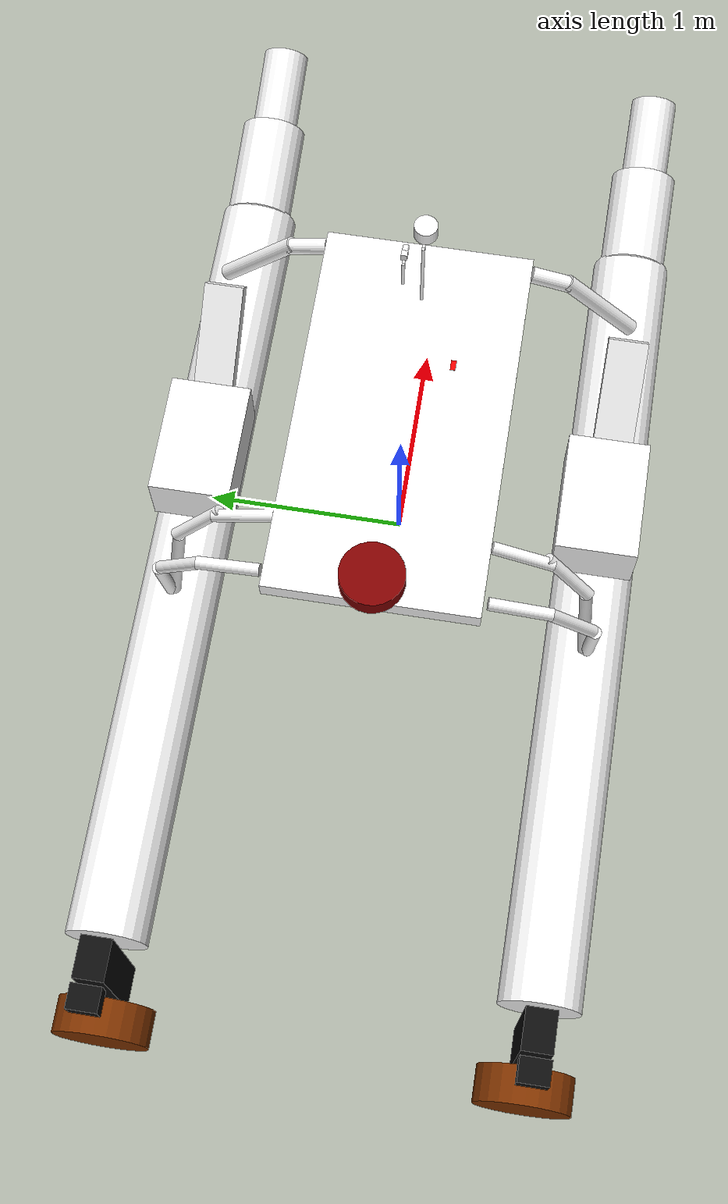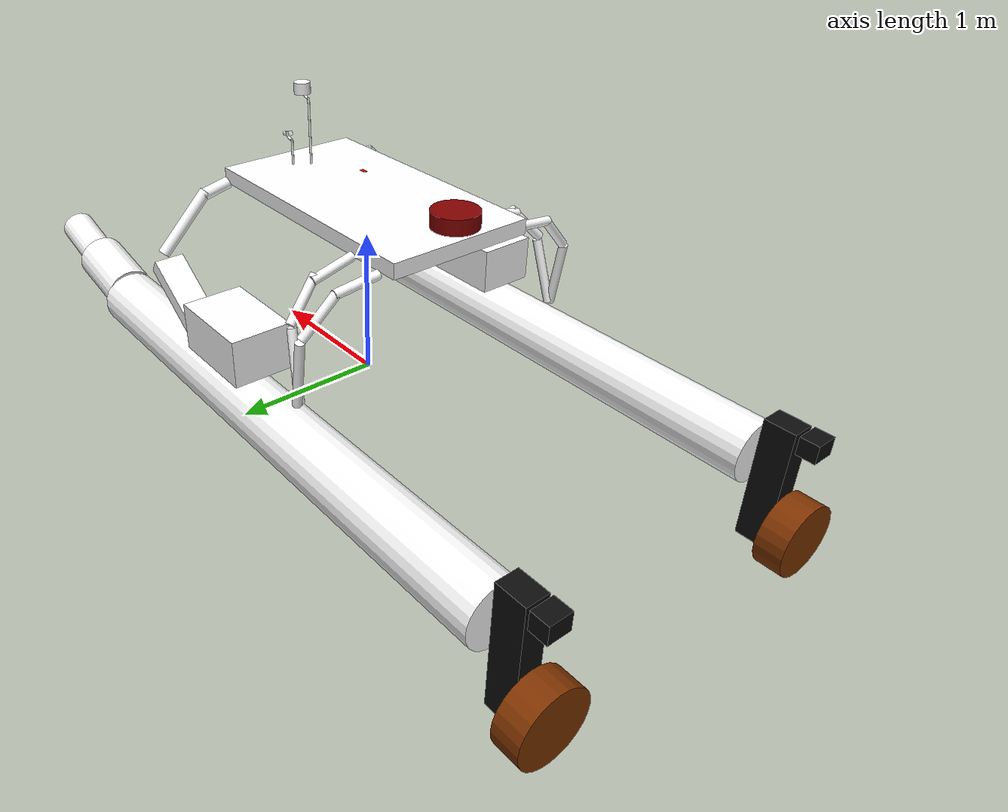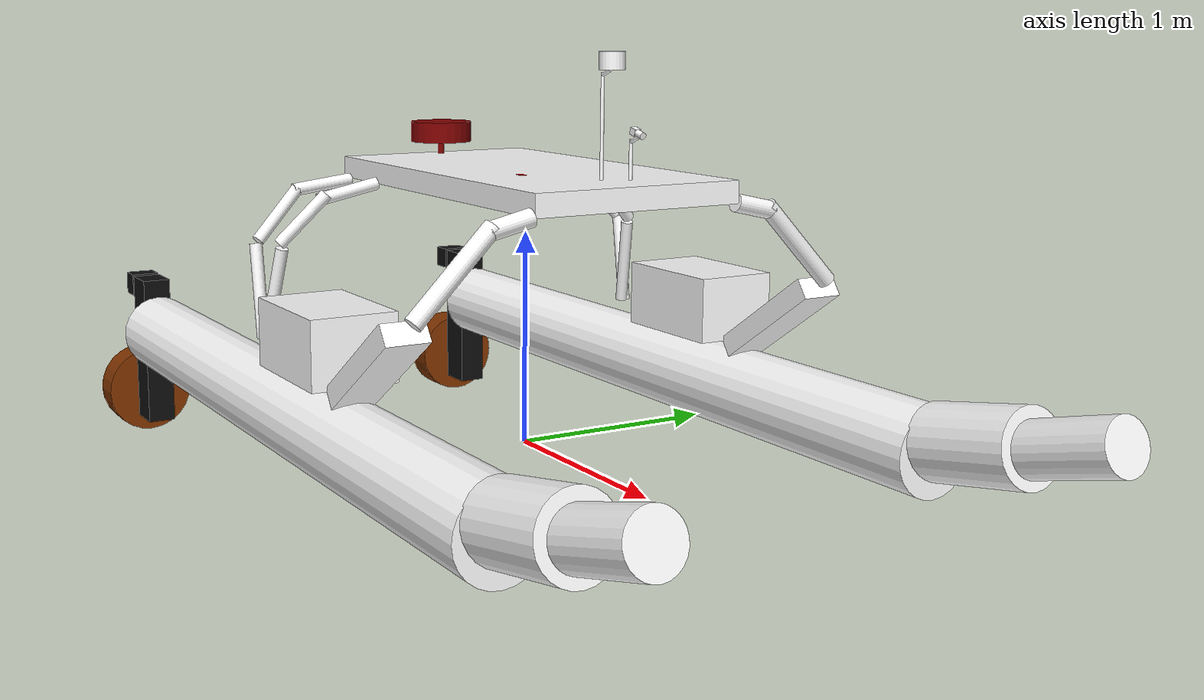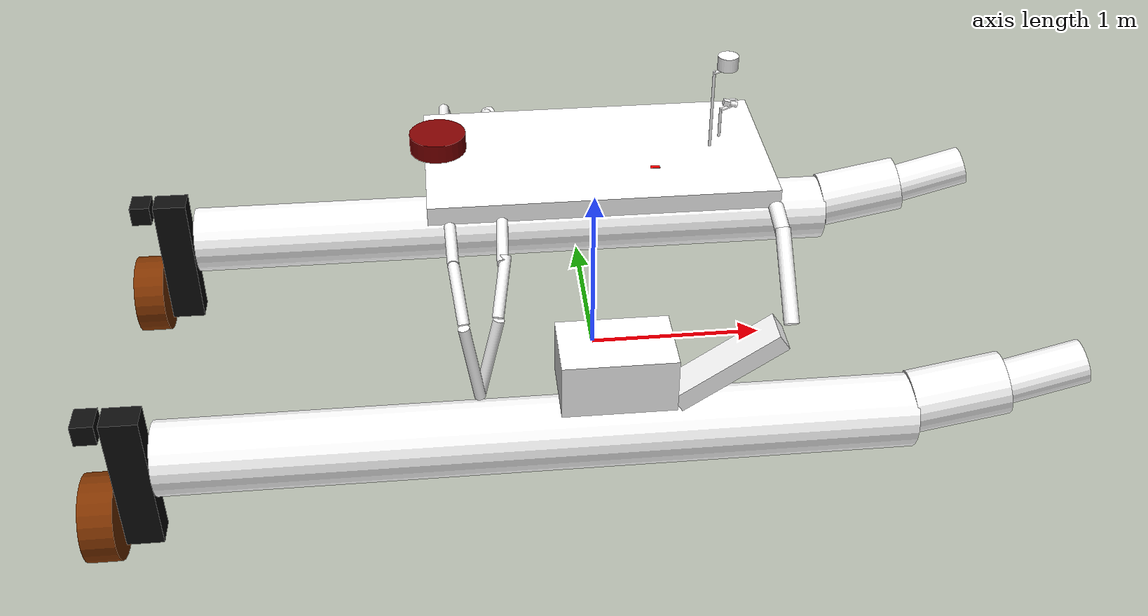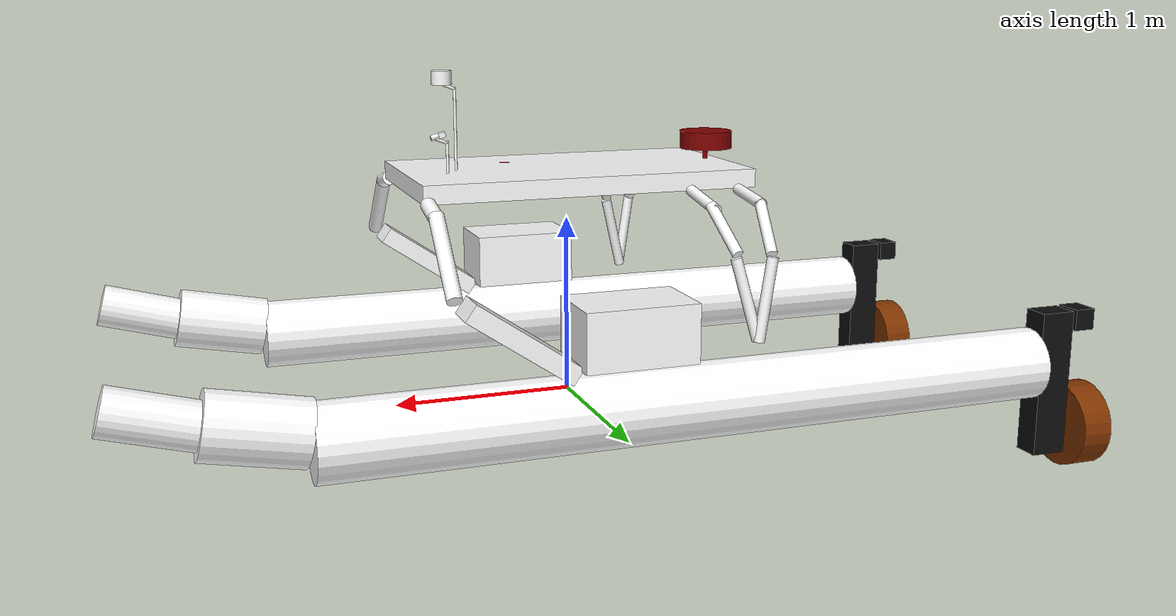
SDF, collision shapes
<?xml version='1.0'?>
<sdf version='1.10'>
  <model name='wamv'>
    <link name='wamv/base_link'>
      <inertial>
        <pose>-0.3 0 0 0 0 0</pose>
        <mass>130</mass>
        <inertia>
          <ixx>200</ixx>
          <iyy>400</iyy>
          <izz>400</izz>
        </inertia>
      </inertial>
      <collision name='wamv/base_link_fixed_joint_lump__left_float_collision'>
        <pose>-0.40000000000000002 1.03 0.20000000000000001 0 1.5707963267948966 0</pose>
        <geometry>
          <cylinder>
            <length>4</length>
            <radius>0.20000000000000001</radius>
          </cylinder>
        </geometry>
      </collision>
      <collision name='wamv/base_link_fixed_joint_lump__left_mid_float_collision_1'>
        <pose>1.8500000000000001 1.03 0.29999999999999999 0 1.3799999999999997 0</pose>
        <geometry>
          <cylinder>
            <length>0.5</length>
            <radius>0.17000000000000001</radius>
          </cylinder>
        </geometry>
      </collision>
      <collision name='wamv/base_link_fixed_joint_lump__left_front_float_collision_2'>
        <pose>2.2999999999999998 1.03 0.40000000000000002 0 1.3 0</pose>
        <geometry>
          <cylinder>
            <length>0.45000000000000001</length>
            <radius>0.12</radius>
          </cylinder>
        </geometry>
      </collision>
      <collision name='wamv/base_link_fixed_joint_lump__front_left_beam_lower_collision_3'>
        <pose>0.90000000000000002 0.84999999999999998 1 0.78000000000000003 0 0</pose>
        <geometry>
          <cylinder>
            <length>0.5</length>
            <radius>0.040000000000000001</radius>
          </cylinder>
        </geometry>
      </collision>
      <collision name='wamv/base_link_fixed_joint_lump__front_left_beam_upper_collision_4'>
        <pose>0.90000000000000002 0.59999999999999998 1.1799999999999999 1.3500000000000001 0 0</pose>
        <geometry>
          <cylinder>
            <length>0.20000000000000001</length>
            <radius>0.040000000000000001</radius>
          </cylinder>
        </geometry>
      </collision>
      <collision name='wamv/base_link_fixed_joint_lump__mid_left_beam_lower_collision_5'>
        <pose>-0.65000000000000002 0.98999999999999999 0.69999999999999996 0.099999999999999978 0.25000000000000006 0</pose>
        <geometry>
          <cylinder>
            <length>0.45000000000000001</length>
            <radius>0.029999999999999999</radius>
          </cylinder>
        </geometry>
      </collision>
      <collision name='wamv/base_link_fixed_joint_lump__mid_left_beam_medium_collision_6'>
        <pose>-0.56999999999999995 0.87 1.05 0.75000000000000033 0.25000000000000017 0</pose>
        <geometry>
          <cylinder>
            <length>0.32000000000000001</length>
            <radius>0.029999999999999999</radius>
          </cylinder>
        </geometry>
      </collision>
      <collision name='wamv/base_link_fixed_joint_lump__mid_left_beam_upper_collision_7'>
        <pose>-0.55000000000000004 0.65000000000000002 1.1699999999999999 1.3500000000000001 0.25000000000000011 0</pose>
        <geometry>
          <cylinder>
            <length>0.29999999999999999</length>
            <radius>0.029999999999999999</radius>
          </cylinder>
        </geometry>
      </collision>
      <collision name='wamv/base_link_fixed_joint_lump__rear_left_beam_lower_collision_8'>
        <pose>-0.73999999999999999 1.03 0.69999999999999996 0 -0.14999999999999999 0</pose>
        <geometry>
          <cylinder>
            <length>0.45000000000000001</length>
            <radius>0.029999999999999999</radius>
          </cylinder>
        </geometry>
      </collision>
      <collision name='wamv/base_link_fixed_joint_lump__rear_left_beam_medium_collision_9'>
        <pose>-0.79000000000000004 0.91000000000000003 1.05 0.75000000000000022 -0.14999999999999999 -1.4035390109491176e-17</pose>
        <geometry>
          <cylinder>
            <length>0.32000000000000001</length>
            <radius>0.029999999999999999</radius>
          </cylinder>
        </geometry>
      </collision>
      <collision name='wamv/base_link_fixed_joint_lump__rear_left_beam_upper_collision_10'>
        <pose>-0.81000000000000005 0.67000000000000004 1.1799999999999999 1.45 -0.14999999999999999 0</pose>
        <geometry>
          <cylinder>
            <length>0.29999999999999999</length>
            <radius>0.029999999999999999</radius>
          </cylinder>
        </geometry>
      </collision>
      <collision name='wamv/base_link_fixed_joint_lump__left_joint_collision_11'>
        <pose>0.57999999999999996 1.03 0.59999999999999998 0 -0.59999999999999987 0</pose>
        <geometry>
          <box>
            <size>0.65000000000000002 0.20000000000000001 0.10000000000000001</size>
          </box>
        </geometry>
      </collision>
      <collision name='wamv/base_link_fixed_joint_lump__right_float_collision_12'>
        <pose>-0.40000000000000002 -1.03 0.20000000000000001 0 1.5707963267948966 0</pose>
        <geometry>
          <cylinder>
            <length>4</length>
            <radius>0.20000000000000001</radius>
          </cylinder>
        </geometry>
      </collision>
      <collision name='wamv/base_link_fixed_joint_lump__right_mid_float_collision_13'>
        <pose>1.8500000000000001 -1.03 0.29999999999999999 0 1.3799999999999997 0</pose>
        <geometry>
          <cylinder>
            <length>0.5</length>
            <radius>0.17000000000000001</radius>
          </cylinder>
        </geometry>
      </collision>
      <collision name='wamv/base_link_fixed_joint_lump__right_front_float_collision_14'>
        <pose>2.2999999999999998 -1.03 0.40000000000000002 0 1.3 0</pose>
        <geometry>
          <cylinder>
            <length>0.45000000000000001</length>
            <radius>0.12</radius>
          </cylinder>
        </geometry>
      </collision>
      <collision name='wamv/base_link_fixed_joint_lump__front_right_beam_lower_collision_15'>
        <pose>0.90000000000000002 -0.84999999999999998 1 -0.78000000000000003 0 0</pose>
        <geometry>
          <cylinder>
            <length>0.5</length>
            <radius>0.040000000000000001</radius>
          </cylinder>
        </geometry>
      </collision>
      <collision name='wamv/base_link_fixed_joint_lump__front_right_beam_upper_collision_16'>
        <pose>0.90000000000000002 -0.59999999999999998 1.1799999999999999 -1.3500000000000001 0 0</pose>
        <geometry>
          <cylinder>
            <length>0.20000000000000001</length>
            <radius>0.040000000000000001</radius>
          </cylinder>
        </geometry>
      </collision>
      <collision name='wamv/base_link_fixed_joint_lump__mid_right_beam_lower_collision_17'>
        <pose>-0.65000000000000002 -0.98999999999999999 0.69999999999999996 -0.099999999999999978 0.25000000000000006 0</pose>
        <geometry>
          <cylinder>
            <length>0.45000000000000001</length>
            <radius>0.029999999999999999</radius>
          </cylinder>
        </geometry>
      </collision>
      <collision name='wamv/base_link_fixed_joint_lump__mid_right_beam_medium_collision_18'>
        <pose>-0.56999999999999995 -0.87 1.05 -0.75000000000000033 0.25000000000000017 0</pose>
        <geometry>
          <cylinder>
            <length>0.32000000000000001</length>
            <radius>0.029999999999999999</radius>
          </cylinder>
        </geometry>
      </collision>
      <collision name='wamv/base_link_fixed_joint_lump__mid_right_beam_upper_collision_19'>
        <pose>-0.55000000000000004 -0.65000000000000002 1.1699999999999999 -1.3500000000000001 0.25000000000000011 0</pose>
        <geometry>
          <cylinder>
            <length>0.29999999999999999</length>
            <radius>0.029999999999999999</radius>
          </cylinder>
        </geometry>
      </collision>
      <collision name='wamv/base_link_fixed_joint_lump__rear_right_beam_lower_collision_20'>
        <pose>-0.73999999999999999 -1.03 0.69999999999999996 0 -0.14999999999999999 0</pose>
        <geometry>
          <cylinder>
            <length>0.45000000000000001</length>
            <radius>0.029999999999999999</radius>
          </cylinder>
        </geometry>
      </collision>
      <collision name='wamv/base_link_fixed_joint_lump__rear_right_beam_medium_collision_21'>
        <pose>-0.79000000000000004 -0.91000000000000003 1.05 -0.75000000000000022 -0.14999999999999999 1.4035390109491176e-17</pose>
        <geometry>
          <cylinder>
            <length>0.32000000000000001</length>
            <radius>0.029999999999999999</radius>
          </cylinder>
        </geometry>
      </collision>
      <collision name='wamv/base_link_fixed_joint_lump__rear_right_beam_upper_collision_22'>
        <pose>-0.81000000000000005 -0.67000000000000004 1.1799999999999999 -1.45 -0.14999999999999999 0</pose>
        <geometry>
          <cylinder>
            <length>0.29999999999999999</length>
            <radius>0.029999999999999999</radius>
          </cylinder>
        </geometry>
      </collision>
      <collision name='wamv/base_link_fixed_joint_lump__right_joint_collision_23'>
        <pose>0.57999999999999996 -1.03 0.59999999999999998 0 -0.59999999999999987 0</pose>
        <geometry>
          <box>
            <size>0.65000000000000002 0.20000000000000001 0.10000000000000001</size>
          </box>
        </geometry>
      </collision>
      <collision name='wamv/base_link_fixed_joint_lump__top_base_collision_24'>
        <pose>0 0 1.25 0 0 0</pose>
        <geometry>
          <box>
            <size>1.8500000000000001 1 0.10000000000000001</size>
          </box>
        </geometry>
      </collision>
      <collision name='wamv/base_link_fixed_joint_lump__front_camera_post_collision_collision_25'>
        <pose>0.69999999999999996 0.10000000000000001 1.3847499999999999 0 0 0</pose>
        <geometry>
          <cylinder>
            <length>0.17649999999999999</length>
            <radius>0.0076</radius>
          </cylinder>
        </geometry>
      </collision>
      <collision name='wamv/base_link_fixed_joint_lump__front_camera_post_arm_collision_collision_26'>
        <pose>0.72999999999999998 0.10000000000000001 1.4730000000000001 -1.2042771838760871 5.5511151231257827e-17 -1.570796326794897</pose>
        <geometry>
          <cylinder>
            <length>0.065000000000000002</length>
            <radius>0.0080000000000000002</radius>
          </cylinder>
        </geometry>
      </collision>
      <collision name='wamv/base_link_fixed_joint_lump__front_camera_lens_collision_collision_27'>
        <pose>0.76738666487320317 0.10000000000000001 1.495341257188155 3.1415926535897931 1.3089969389957472 3.1415926535897931</pose>
        <geometry>
          <cylinder>
            <length>0.042000000000000003</length>
            <radius>0.014999999999999999</radius>
          </cylinder>
        </geometry>
      </collision>
      <collision name='wamv/base_link_fixed_joint_lump__front_camera_box_collision_collision_28'>
        <pose>0.73019852056107404 0.10000000000000001 1.5053057904246021 0 0.26179938779914941 0</pose>
        <geometry>
          <box>
            <size>0.035999999999999997 0.029999999999999999 0.029999999999999999</size>
          </box>
        </geometry>
      </collision>
      <collision name='wamv/base_link_fixed_joint_lump__lidar_wamv_post_collision_collision_33'>
        <pose>0.62999999999999989 0 1.52325 0 0 0</pose>
        <geometry>
          <cylinder>
            <length>0.45350000000000013</length>
            <radius>0.0076</radius>
          </cylinder>
        </geometry>
      </collision>
      <collision name='wamv/base_link_fixed_joint_lump__lidar_wamv_post_arm_collision_collision_34'>
        <pose>0.65999999999999992 0 1.75 -1.2042771838760871 5.5511151231257827e-17 -1.570796326794897</pose>
        <geometry>
          <cylinder>
            <length>0.065000000000000002</length>
            <radius>0.0080000000000000002</radius>
          </cylinder>
        </geometry>
      </collision>
      <collision name='wamv/base_link_fixed_joint_lump__lidar_wamv_collision_collision_35'>
        <pose>0.69999999999999996 0 1.8 0 0 0</pose>
        <geometry>
          <cylinder>
            <length>0.074999999999999997</length>
            <radius>0.055</radius>
          </cylinder>
        </geometry>
      </collision>
      <collision name='wamv/base_link_fixed_joint_lump__left_battery_collision_collision_40'>
        <pose>0 1 0.59999999999999998 0 0 0</pose>
        <geometry>
          <box>
            <size>0.59999999999999998 0.40000000000000002 0.31</size>
          </box>
        </geometry>
      </collision>
      <collision name='wamv/base_link_fixed_joint_lump__right_battery_collision_collision_41'>
        <pose>0 -1 0.59999999999999998 0 0 0</pose>
        <geometry>
          <box>
            <size>0.59999999999999998 0.40000000000000002 0.31</size>
          </box>
        </geometry>
      </collision>
      <visual name='wamv/base_link_visual'>
        <pose>0 0 0 0 0 0</pose>
        <geometry>
          <mesh>
            <scale>1 1 1</scale>
            <uri>model://wamv/meshes/WAMV.dae</uri>
          </mesh>
        </geometry>
        <material>
          <diffuse>1 1 1 1</diffuse>
          <specular>1 1 1 1</specular>
          <pbr>
            <metal>
              <albedo_map>model://wamv/materials/WAM-V_Albedo.png</albedo_map>
              <normal_map>model://wamv/materials/WAM-V_Normal.png</normal_map>
              <roughness_map>model://wamv/materials/WAM-V_Roughness.png</roughness_map>
              <metalness_map>model://wamv/materials/WAM-V_Metalness.png</metalness_map>
            </metal>
          </pbr>
        </material>
      </visual>
      <visual name='wamv/base_link_fixed_joint_lump__wamv/front_camera_post_link_visual_1'>
        <pose>0.69999999999999996 0.10000000000000001 1.3847499999999999 0 0 0</pose>
        <geometry>
          <cylinder>
            <length>0.17649999999999999</length>
            <radius>0.0076</radius>
          </cylinder>
        </geometry>
        <material>
          <diffuse>0 0 0 1</diffuse>
          <ambient>0 0 0 1</ambient>
        </material>
      </visual>
      <visual name='wamv/base_link_fixed_joint_lump__front_camera_post_arm_visual_visual_2'>
        <pose>0.69199999999999995 0.10000000000000001 1.47 -1.0471975511965981 5.5511151231257827e-17 -1.570796326794897</pose>
        <geometry>
          <mesh>
            <scale>1 1 1</scale>
            <uri>model://sensor_post/meshes/sensor_post_arm.dae</uri>
          </mesh>
        </geometry>
      </visual>
      <visual name='wamv/base_link_fixed_joint_lump__wamv/front_camera_link_visual_3'>
        <pose>0.71812444773246065 0.10000000000000001 1.5085410284883829 0.26179938779914941 2.7755575615628914e-17 1.570796326794897</pose>
        <geometry>
          <mesh>
            <scale>1 1 1</scale>
            <uri>model://mono_camera/meshes/mono_camera.dae</uri>
          </mesh>
        </geometry>
        <material>
          <diffuse>1 1 1 1</diffuse>
          <specular>1 1 1 1</specular>
          <pbr>
            <metal>
              <albedo_map>model://mono_camera/materials/mono_camera_Albedo.png</albedo_map>
              <normal_map>model://mono_camera/materials/mono_camera_Normal.png</normal_map>
              <roughness_map>model://mono_camera/materials/mono_camera_Roughness.png</roughness_map>
              <metalness_map>model://mono_camera/materials/mono_camera_Metalness.png</metalness_map>
            </metal>
          </pbr>
        </material>
      </visual>
      <visual name='wamv/base_link_fixed_joint_lump__wamv/lidar_wamv_post_link_visual_7'>
        <pose>0.62999999999999989 0 1.52325 0 0 0</pose>
        <geometry>
          <cylinder>
            <length>0.45350000000000013</length>
            <radius>0.0076</radius>
          </cylinder>
        </geometry>
        <material>
          <diffuse>0 0 0 1</diffuse>
          <ambient>0 0 0 1</ambient>
        </material>
      </visual>
      <visual name='wamv/base_link_fixed_joint_lump__lidar_wamv_post_arm_visual_visual_8'>
        <pose>0.62199999999999989 0 1.7470000000000001 -1.0471975511965981 5.5511151231257827e-17 -1.570796326794897</pose>
        <geometry>
          <mesh>
            <scale>1 1 1</scale>
            <uri>model://sensor_post/meshes/sensor_post_arm.dae</uri>
          </mesh>
        </geometry>
      </visual>
      <visual name='wamv/base_link_fixed_joint_lump__wamv/lidar_wamv_link_visual_9'>
        <pose>0.69999999999999996 0 1.7649999999999999 0 0 0</pose>
        <geometry>
          <mesh>
            <scale>1 1 1</scale>
            <uri>model://3d_lidar/meshes/3d_lidar.dae</uri>
          </mesh>
        </geometry>
        <material>
          <diffuse>1 1 1 1</diffuse>
          <specular>1 1 1 1</specular>
          <pbr>
            <metal>
              <albedo_map>model://3d_lidar/materials/3d_Lidar_Albedo.png</albedo_map>
              <normal_map>model://3d_lidar/materials/3d_Lidar_Normal.png</normal_map>
              <roughness_map>model://3d_lidar/materials/3d_Lidar_Roughness.png</roughness_map>
              <metalness_map>model://3d_lidar/materials/3d_Lidar_Metalness.png</metalness_map>
            </metal>
          </pbr>
        </material>
      </visual>
      <visual name='wamv/base_link_fixed_joint_lump__wamv/left_battery_link_visual_13'>
        <pose>0 -0.03000000000000003 0 0 0 0</pose>
        <geometry>
          <mesh>
            <scale>1 1 1</scale>
            <uri>model://battery/meshes/battery.dae</uri>
          </mesh>
        </geometry>
        <material>
          <diffuse>1 1 1 1</diffuse>
          <specular>1 1 1 1</specular>
          <pbr>
            <metal>
              <albedo_map>model://battery/materials/battery_Albedo.png</albedo_map>
              <normal_map>model://battery/materials/battery_Normal.png</normal_map>
              <roughness_map>model://battery/materials/battery_Roughness.png</roughness_map>
              <metalness_map>model://battery/materials/battery_Metalness.png</metalness_map>
            </metal>
          </pbr>
        </material>
      </visual>
      <visual name='wamv/base_link_fixed_joint_lump__wamv/right_battery_link_visual_14'>
        <pose>0 -2.0299999999999998 0 0 0 0</pose>
        <geometry>
          <mesh>
            <scale>1 1 1</scale>
            <uri>model://battery/meshes/battery.dae</uri>
          </mesh>
        </geometry>
        <material>
          <diffuse>1 1 1 1</diffuse>
          <specular>1 1 1 1</specular>
          <pbr>
            <metal>
              <albedo_map>model://battery/materials/battery_Albedo.png</albedo_map>
              <normal_map>model://battery/materials/battery_Normal.png</normal_map>
              <roughness_map>model://battery/materials/battery_Roughness.png</roughness_map>
              <metalness_map>model://battery/materials/battery_Metalness.png</metalness_map>
            </metal>
          </pbr>
        </material>
      </visual>
      <sensor name='contact_sensor' type='contact'>
        <contact>
          <collision>wamv/base_link_fixed_joint_lump__top_base_collision_24</collision>
          <collision>wamv/base_link_fixed_joint_lump__left_float_collision</collision>
          <collision>wamv/base_link_fixed_joint_lump__left_mid_float_collision_1</collision>
          <collision>wamv/base_link_fixed_joint_lump__left_front_float_collision_2</collision>
          <collision>wamv/base_link_fixed_joint_lump__right_float_collision_12</collision>
          <collision>wamv/base_link_fixed_joint_lump__right_mid_float_collision_13</collision>
          <collision>wamv/base_link_fixed_joint_lump__right_front_float_collision_14</collision>
          <topic>/wamv/contacts</topic>
        </contact>
        <always_on>true</always_on>
        <update_rate>5</update_rate>
      </sensor>
      <sensor name='front_camera_sensor' type='camera'>
        <update_rate>30</update_rate>
        <camera name='front_camera_camera'>
          <horizontal_fov>1.3962634</horizontal_fov>
          <image>
            <width>1280</width>
            <height>720</height>
            <format>R8G8B8</format>
          </image>
          <clip>
            <near>0.050000000000000003</near>
            <far>400</far>
          </clip>
          <noise>
            <type>gaussian</type>
            <mean>0</mean>
            <stddev>0.0070000000000000001</stddev>
          </noise>
        </camera>
        <pose>0.75 0.10000000000000001 1.5 0 0.261799 0</pose>
      </sensor>
      <sensor name='lidar_wamv_sensor' type='gpu_ray'>
        <update_rate>10</update_rate>
        <ray>
          <scan>
            <horizontal>
              <samples>1875</samples>
              <resolution>1</resolution>
              <min_angle>-3.1415926535897931</min_angle>
              <max_angle>3.1415926535897931</max_angle>
            </horizontal>
            <vertical>
              <samples>16</samples>
              <resolution>1</resolution>
              <min_angle>-0.26179938779914941</min_angle>
              <max_angle>0.26179938779914941</max_angle>
            </vertical>
          </scan>
          <range>
            <min>0.10000000000000001</min>
            <max>130</max>
          </range>
          <noise>
            <type>gaussian</type>
            <mean>0</mean>
            <stddev>0.01</stddev>
          </noise>
        </ray>
        <pose>0.69999999999999996 0 1.8 0 0 0</pose>
      </sensor>
    </link>
    <joint name='wamv/gps_wamv_joint' type='revolute'>
      <pose relative_to='wamv/base_link'>-0.84999999999999998 0 1.3 0 0 0</pose>
      <parent>wamv/base_link</parent>
      <child>wamv/gps_wamv_link</child>
      <axis>
        <xyz>0 0 1</xyz>
        <limit>
          <lower>0</lower>
          <upper>0</upper>
          <effort>1000</effort>
          <velocity>0</velocity>
        </limit>
        <dynamics>
          <spring_reference>0</spring_reference>
          <spring_stiffness>0</spring_stiffness>
        </dynamics>
      </axis>
    </joint>
    <link name='wamv/gps_wamv_link'>
      <pose relative_to='wamv/gps_wamv_joint'>0 0 0 0 0 0</pose>
      <inertial>
        <pose>0 0 0 0 0 0</pose>
        <mass>1</mass>
        <inertia>
          <ixx>0.0064580000000000002</ixx>
          <ixy>0</ixy>
          <ixz>0</ixz>
          <iyy>0.0064580000000000002</iyy>
          <iyz>0</iyz>
          <izz>0.01125</izz>
        </inertia>
      </inertial>
      <collision name='wamv/gps_wamv_link_fixed_joint_lump__gps_wamv_collision_base_collision'>
        <pose>0 0 0.025000000000000001 0 0 0</pose>
        <geometry>
          <cylinder>
            <length>0.050000000000000003</length>
            <radius>0.014999999999999999</radius>
          </cylinder>
        </geometry>
      </collision>
      <collision name='wamv/gps_wamv_link_fixed_joint_lump__gps_wamv_collision_antenna_collision_1'>
        <pose>0 0 0.11 0 0 0</pose>
        <geometry>
          <cylinder>
            <length>0.10000000000000001</length>
            <radius>0.14999999999999999</radius>
          </cylinder>
        </geometry>
      </collision>
      <visual name='wamv/gps_wamv_link_fixed_joint_lump__gps_wamv_visual_visual'>
        <pose>0 0 0 0 0 0</pose>
        <geometry>
          <mesh>
            <scale>1 1 1</scale>
            <uri>model://gps/meshes/gps.dae</uri>
          </mesh>
        </geometry>
        <material>
          <diffuse>0.5 0.0 0.0 1</diffuse>
          <specular>0.5 0.0 0.0 1</specular>
          <ambient>0.5 0.0 0.0 1</ambient>
        </material>
      </visual>
      <sensor name='navsat' type='navsat'>
        <always_on>true</always_on>
        <update_rate>20</update_rate>
      </sensor>
    </link>
    <joint name='wamv/imu_wamv_joint' type='revolute'>
      <pose relative_to='wamv/base_link'>0.29999999999999999 -0.20000000000000001 1.3 0 0 0</pose>
      <parent>wamv/base_link</parent>
      <child>wamv/imu_wamv_link</child>
      <axis>
        <xyz>0 0 1</xyz>
        <limit>
          <lower>0</lower>
          <upper>0</upper>
          <effort>1000</effort>
          <velocity>0</velocity>
        </limit>
        <dynamics>
          <spring_reference>0</spring_reference>
          <spring_stiffness>0</spring_stiffness>
        </dynamics>
      </axis>
    </joint>
    <link name='wamv/imu_wamv_link'>
      <pose relative_to='wamv/imu_wamv_joint'>0 0 0 0 0 0</pose>
      <inertial>
        <pose>0 0 0 0 0 0</pose>
        <mass>0.10000000000000001</mass>
        <inertia>
          <ixx>5.4199999999999998e-06</ixx>
          <ixy>0</ixy>
          <ixz>0</ixz>
          <iyy>2.1039999999999998e-05</iyy>
          <iyz>0</iyz>
          <izz>2.6040000000000001e-05</izz>
        </inertia>
      </inertial>
      <collision name='wamv/imu_wamv_link_fixed_joint_lump__imu_wamv_collision_collision'>
        <pose>0 0 0 0 0 0</pose>
        <geometry>
          <box>
            <size>0.050000000000000003 0.025000000000000001 0.0050000000000000001</size>
          </box>
        </geometry>
      </collision>
      <visual name='wamv/imu_wamv_link_fixed_joint_lump__imu_wamv_visual_visual'>
        <pose>0 0 0 0 0 0</pose>
        <geometry>
          <box>
            <size>0.050000000000000003 0.025000000000000001 0.0050000000000000001</size>
          </box>
        </geometry>
        <material>
          <diffuse>1 0 0 1</diffuse>
          <ambient>1 0 0 1</ambient>
        </material>
      </visual>
      <sensor name='imu_wamv_sensor' type='imu'>
        <update_rate>100</update_rate>
        <imu>
          <angular_velocity>
            <x>
              <noise type='gaussian'>
                <mean>0</mean>
                <stddev>0.0089999999999999993</stddev>
                <bias_mean>0.00075000000000000002</bias_mean>
                <bias_stddev>0.0050000000000000001</bias_stddev>
                <dynamic_bias_stddev>2.0000000000000002e-05</dynamic_bias_stddev>
                <dynamic_bias_correlation_time>400</dynamic_bias_correlation_time>
                <precision>0.00025000000000000001</precision>
              </noise>
            </x>
            <y>
              <noise type='gaussian'>
                <mean>0</mean>
                <stddev>0.0089999999999999993</stddev>
                <bias_mean>0.00075000000000000002</bias_mean>
                <bias_stddev>0.0050000000000000001</bias_stddev>
                <dynamic_bias_stddev>2.0000000000000002e-05</dynamic_bias_stddev>
                <dynamic_bias_correlation_time>400</dynamic_bias_correlation_time>
                <precision>0.00025000000000000001</precision>
              </noise>
            </y>
            <z>
              <noise type='gaussian'>
                <mean>0</mean>
                <stddev>0.0089999999999999993</stddev>
                <bias_mean>0.00075000000000000002</bias_mean>
                <bias_stddev>0.0050000000000000001</bias_stddev>
                <dynamic_bias_stddev>2.0000000000000002e-05</dynamic_bias_stddev>
                <dynamic_bias_correlation_time>400</dynamic_bias_correlation_time>
                <precision>0.00025000000000000001</precision>
              </noise>
            </z>
          </angular_velocity>
          <linear_acceleration>
            <x>
              <noise type='gaussian'>
                <mean>0</mean>
                <stddev>0.021000000000000001</stddev>
                <bias_mean>0.050000000000000003</bias_mean>
                <bias_stddev>0.0074999999999999997</bias_stddev>
                <dynamic_bias_stddev>0.00037500000000000001</dynamic_bias_stddev>
                <dynamic_bias_correlation_time>175</dynamic_bias_correlation_time>
                <precision>0.0050000000000000001</precision>
              </noise>
            </x>
            <y>
              <noise type='gaussian'>
                <mean>0</mean>
                <stddev>0.021000000000000001</stddev>
                <bias_mean>0.050000000000000003</bias_mean>
                <bias_stddev>0.0074999999999999997</bias_stddev>
                <dynamic_bias_stddev>0.00037500000000000001</dynamic_bias_stddev>
                <dynamic_bias_correlation_time>175</dynamic_bias_correlation_time>
                <precision>0.0050000000000000001</precision>
              </noise>
            </y>
            <z>
              <noise type='gaussian'>
                <mean>0</mean>
                <stddev>0.021000000000000001</stddev>
                <bias_mean>0.050000000000000003</bias_mean>
                <bias_stddev>0.0074999999999999997</bias_stddev>
                <dynamic_bias_stddev>0.00037500000000000001</dynamic_bias_stddev>
                <dynamic_bias_correlation_time>175</dynamic_bias_correlation_time>
                <precision>0.0050000000000000001</precision>
              </noise>
            </z>
          </linear_acceleration>
          <orientation_reference_frame>
            <localization>ENU</localization>
          </orientation_reference_frame>
        </imu>
      </sensor>
    </link>
    <joint name='wamv/left_chassis_engine_joint' type='fixed'>
      <pose relative_to='wamv/base_link'>-2.3737759999999999 1.0271349999999999 0.31823699999999999 0 0 0</pose>
      <axis>
      <xyz>0 0 1</xyz>
      <limit>
        <lower>-1.57</lower>
        <upper>1.57</upper>
      </limit>
    </axis>
      <parent>wamv/base_link</parent>
      <child>wamv/left_engine_link</child>
    </joint>
    <link name='wamv/left_engine_link'>
      <pose relative_to='wamv/left_chassis_engine_joint'>0 0 0 0 0 0</pose>
      <inertial>
        <pose>0 0 0 0 0 0</pose>
        <mass>15</mass>
        <inertia>
          <ixx>0.88924499999999995</ixx>
          <ixy>0</ixy>
          <ixz>0</ixz>
          <iyy>0.91112499999999996</iyy>
          <iyz>0</iyz>
          <izz>0.078125</izz>
        </inertia>
      </inertial>
      <collision name='wamv/left_engine_link_fixed_joint_lump__left_engine_vertical_axis_collision_collision'>
        <pose>-0.16 0 -0.23999999999999999 0 0 0</pose>
        <geometry>
          <box>
            <size>0.20000000000000001 0.14999999999999999 0.82999999999999996</size>
          </box>
        </geometry>
      </collision>
      <collision name='wamv/left_engine_link_fixed_joint_lump__left_engine_rear_end_collision_collision_1'>
        <pose>-0.34000000000000002 0 0.12 0 0 0</pose>
        <geometry>
          <box>
            <size>0.12 0.14999999999999999 0.12</size>
          </box>
        </geometry>
      </collision>
      <visual name='wamv/left_engine_link_visual'>
        <pose>0 0 0 0 0 0</pose>
        <geometry>
          <mesh>
            <scale>1 1 1</scale>
            <uri>model://wamv/meshes/engine.dae</uri>
          </mesh>
        </geometry>
        <material>
          <diffuse>0.05 0.05 0.05 1</diffuse>
          <specular>0.05 0.05 0.05 1</specular>
          <ambient>0.05 0.05 0.05 1</ambient>
        </material>
      </visual>
    </link>
    <joint name='left_engine_propeller_joint' type='revolute'>
      <pose relative_to='wamv/left_engine_link'>-0.27815600000000001 0 -0.50937100000000002 0 0 0</pose>
      <parent>wamv/left_engine_link</parent>
      <child>wamv/left_propeller_link</child>
      <axis>
        <xyz>1 0 0</xyz>
        <limit>
          <effort>100</effort>
          <velocity>100</velocity>
          <lower>-inf</lower>
          <upper>inf</upper>
        </limit>
        <dynamics>
          <damping>0.050000000000000003</damping>
          <friction>0.050000000000000003</friction>
          <spring_reference>0</spring_reference>
          <spring_stiffness>0</spring_stiffness>
        </dynamics>
      </axis>
    </joint>
    <link name='wamv/left_propeller_link'>
      <pose relative_to='left_engine_propeller_joint'>0 0 0 0 0 0</pose>
      <inertial>
        <pose>0 0 0 0 0 0</pose>
        <mass>0.5</mass>
        <inertia>
          <ixx>0.0085450000000000005</ixx>
          <ixy>0</ixy>
          <ixz>0</ixz>
          <iyy>0.0085450000000000005</iyy>
          <iyz>0</iyz>
          <izz>0.0144</izz>
        </inertia>
      </inertial>
      <collision name='wamv/left_propeller_link_fixed_joint_lump__left_propeller_collision_collision'>
        <pose>-0.080000000000000002 0 0 0 1.5707963267948966 0</pose>
        <geometry>
          <cylinder>
            <length>0.17999999999999999</length>
            <radius>0.23999999999999999</radius>
          </cylinder>
        </geometry>
      </collision>
      <visual name='wamv/left_propeller_link_visual'>
        <pose>0 0 0 0 0 0</pose>
        <geometry>
          <mesh>
            <scale>1 1 1</scale>
            <uri>model://wamv/meshes/propeller.dae</uri>
          </mesh>
        </geometry>
        <material>
          <diffuse>0.5 0.2 0.0 1</diffuse>
          <specular>0.5 0.2 0.0 1</specular>
          <ambient>0.5 0.2 0.0 1</ambient>
        </material>
      </visual>
    </link>
    <joint name='wamv/receiver_pinger_joint' type='revolute'>
      <pose relative_to='wamv/base_link'>0 0 0 0 0 0</pose>
      <parent>wamv/base_link</parent>
      <child>wamv/receiver</child>
      <axis>
        <xyz>0 0 1</xyz>
        <limit>
          <lower>0</lower>
          <upper>0</upper>
          <effort>1000</effort>
          <velocity>0</velocity>
        </limit>
        <dynamics>
          <spring_reference>0</spring_reference>
          <spring_stiffness>0</spring_stiffness>
        </dynamics>
      </axis>
    </joint>
    <link name='wamv/receiver'>
      <pose relative_to='wamv/receiver_pinger_joint'>0 0 0 0 0 0</pose>
      <inertial>
        <pose>0 0 0 0 0 0</pose>
        <mass>0.10000000000000001</mass>
        <inertia>
          <ixx>5.4199999999999998e-06</ixx>
          <ixy>0</ixy>
          <ixz>0</ixz>
          <iyy>2.1039999999999998e-05</iyy>
          <iyz>0</iyz>
          <izz>2.6040000000000001e-05</izz>
        </inertia>
      </inertial>
      <visual name='wamv/receiver_visual'>
        <pose>0 0 0 0 0 0</pose>
        <geometry>
          <sphere>
            <radius>0.01</radius>
          </sphere>
        </geometry>
      </visual>
    </link>
    <joint name='wamv/right_chassis_engine_joint' type='fixed'>
      <pose relative_to='wamv/base_link'>-2.3737759999999999 -1.0271349999999999 0.31823699999999999 0 0 0</pose>
      <axis>
      <xyz>0 0 1</xyz>
      <limit>
        <lower>-1.57</lower>
        <upper>1.57</upper>
      </limit>
    </axis>
      <parent>wamv/base_link</parent>
      <child>wamv/right_engine_link</child>
    </joint>
    <link name='wamv/right_engine_link'>
      <pose relative_to='wamv/right_chassis_engine_joint'>0 0 0 0 0 0</pose>
      <inertial>
        <pose>0 0 0 0 0 0</pose>
        <mass>15</mass>
        <inertia>
          <ixx>0.88924499999999995</ixx>
          <ixy>0</ixy>
          <ixz>0</ixz>
          <iyy>0.91112499999999996</iyy>
          <iyz>0</iyz>
          <izz>0.078125</izz>
        </inertia>
      </inertial>
      <collision name='wamv/right_engine_link_fixed_joint_lump__right_engine_vertical_axis_collision_collision'>
        <pose>-0.16 0 -0.23999999999999999 0 0 0</pose>
        <geometry>
          <box>
            <size>0.20000000000000001 0.14999999999999999 0.82999999999999996</size>
          </box>
        </geometry>
      </collision>
      <collision name='wamv/right_engine_link_fixed_joint_lump__right_engine_rear_end_collision_collision_1'>
        <pose>-0.34000000000000002 0 0.12 0 0 0</pose>
        <geometry>
          <box>
            <size>0.12 0.14999999999999999 0.12</size>
          </box>
        </geometry>
      </collision>
      <visual name='wamv/right_engine_link_visual'>
        <pose>0 0 0 0 0 0</pose>
        <geometry>
          <mesh>
            <scale>1 1 1</scale>
            <uri>model://wamv/meshes/engine.dae</uri>
          </mesh>
        </geometry>
        <material>
          <diffuse>0.05 0.05 0.05 1</diffuse>
          <specular>0.05 0.05 0.05 1</specular>
          <ambient>0.05 0.05 0.05 1</ambient>
        </material>
      </visual>
    </link>
    <joint name='right_engine_propeller_joint' type='revolute'>
      <pose relative_to='wamv/right_engine_link'>-0.27815600000000001 0 -0.50937100000000002 0 0 0</pose>
      <parent>wamv/right_engine_link</parent>
      <child>wamv/right_propeller_link</child>
      <axis>
        <xyz>1 0 0</xyz>
        <limit>
          <effort>100</effort>
          <velocity>100</velocity>
          <lower>-inf</lower>
          <upper>inf</upper>
        </limit>
        <dynamics>
          <damping>0.050000000000000003</damping>
          <friction>0.050000000000000003</friction>
          <spring_reference>0</spring_reference>
          <spring_stiffness>0</spring_stiffness>
        </dynamics>
      </axis>
    </joint>
    <link name='wamv/right_propeller_link'>
      <pose relative_to='right_engine_propeller_joint'>0 0 0 0 0 0</pose>
      <inertial>
        <pose>0 0 0 0 0 0</pose>
        <mass>0.5</mass>
        <inertia>
          <ixx>0.0085450000000000005</ixx>
          <ixy>0</ixy>
          <ixz>0</ixz>
          <iyy>0.0085450000000000005</iyy>
          <iyz>0</iyz>
          <izz>0.0144</izz>
        </inertia>
      </inertial>
      <collision name='wamv/right_propeller_link_fixed_joint_lump__right_propeller_collision_collision'>
        <pose>-0.080000000000000002 0 0 0 1.5707963267948966 0</pose>
        <geometry>
          <cylinder>
            <length>0.17999999999999999</length>
            <radius>0.23999999999999999</radius>
          </cylinder>
        </geometry>
      </collision>
      <visual name='wamv/right_propeller_link_visual'>
        <pose>0 0 0 0 0 0</pose>
        <geometry>
          <mesh>
            <scale>1 1 1</scale>
            <uri>model://wamv/meshes/propeller.dae</uri>
          </mesh>
        </geometry>
        <material>
          <diffuse>0.5 0.2 0.0 1</diffuse>
          <specular>0.5 0.2 0.0 1</specular>
          <ambient>0.5 0.2 0.0 1</ambient>
        </material>
      </visual>
    </link>
    <enable_wind>true</enable_wind>

    <plugin name='gz::sim::systems::Thruster' filename='gz-sim-thruster-system'>
      <namespace>wamv</namespace>
      <joint_name>left_engine_propeller_joint</joint_name>
      <thrust_coefficient>0.004422</thrust_coefficient>
      <fluid_density>1000</fluid_density>
      <propeller_diameter>0.2</propeller_diameter>
      <max_thrust_cmd>2353.53383667818</max_thrust_cmd>
       <velocity_control>true</velocity_control>
    </plugin>
    <plugin
      filename="gz-sim-joint-position-controller-system"
      name="gz::sim::systems::JointPositionController">
      <joint_name>left_chassis_engine_joint</joint_name>
      <use_velocity_commands>false</use_velocity_commands>
      <topic>/wamv/left/thruster/joint/cmd_pos</topic>
    </plugin>

    <plugin name='gz::sim::systems::Thruster' filename='gz-sim-thruster-system'>
      <namespace>wamv</namespace>
      <joint_name>right_engine_propeller_joint</joint_name>
      <thrust_coefficient>-0.004422</thrust_coefficient>
      <fluid_density>1000</fluid_density>
      <propeller_diameter>0.2</propeller_diameter>
      <max_thrust_cmd>2353.53383667818</max_thrust_cmd>
      <velocity_control>true</velocity_control>
    </plugin>

     <plugin
      filename="gz-sim-joint-position-controller-system"
      name="gz::sim::systems::JointPositionController">
      <joint_name>right_chassis_engine_joint</joint_name>
      <use_velocity_commands>false</use_velocity_commands>
      <topic>/wamv/right/thruster/joint/cmd_pos</topic>
    </plugin>
    <plugin name='gz::sim::systems::DetachableJoint' filename='gz-sim-detachable-joint-system'>
      <parent_link>wamv/base_link</parent_link>
      <child_model>platform</child_model>
      <child_link>dummy_upper</child_link>
      <topic>/vrx/release</topic>
      <suppress_child_warning>true</suppress_child_warning>
    </plugin>

    <plugin name='gz::sim::systems::PosePublisher' filename='libgz-sim-pose-publisher-system.so'>
      <publish_link_pose>false</publish_link_pose>
      <publish_sensor_pose>true</publish_sensor_pose>
      <publish_collision_pose>false</publish_collision_pose>
      <publish_visual_pose>false</publish_visual_pose>
      <publish_nested_model_pose>false</publish_nested_model_pose>
      <publish_model_pose>false</publish_model_pose>
      <use_pose_vector_msg>true</use_pose_vector_msg>
      <static_publisher>false</static_publisher>
      <static_update_frequency>1</static_update_frequency>
    </plugin>

    <plugin name='gz::sim::systems::JointStatePublisher' filename='gz-sim-joint-state-publisher-system'/>

    <plugin name='gz::sim::systems::OdometryPublisher' filename='gz-sim-odometry-publisher-system'>
      <dimensions>3</dimensions>
      <odom_publish_frequency>10.0</odom_publish_frequency>
      <odom_frame>map</odom_frame>
      <robot_base_frame>wamv/base_link</robot_base_frame>
    </plugin>

    <plugin name="gz::sim::systems::Hydrodynamics" filename="gz-sim-hydrodynamics-system">
        <link_name>wamv/base_link</link_name>
        <water_density>1000</water_density>
        <xDotU>-4.876161</xDotU>
        <yDotV>-126.324739</yDotV>
        <zDotW>-126.324739</zDotW>
        <kDotP>0</kDotP>
        <mDotQ>-33.46</mDotQ>
        <nDotR>-33.46</nDotR>
        <xUabsU>-6.2282</xUabsU>
        <xU>0</xU>
        <yVabsV>-601.27</yVabsV>
        <yV>0</yV>
        <zWabsW>-601.27</zWabsW>
        <zW>0</zW>
        <kPabsP>-0.1916</kPabsP>
        <kP>0</kP>
        <mQabsQ>-632.698957</mQabsQ>
        <mQ>0</mQ>
        <nRabsR>-632.698957</nRabsR>
        <nR>0</nR>
    </plugin>

    <frame name='wamv/front_camera_to_front_camera_link_optical_joint' attached_to='wamv/front_camera_link'>
      <pose>0 0 0 -1.5707963267948959 -5.5511151231257827e-17 -1.5707963267948959</pose>
    </frame>
    <frame name='wamv/front_camera_link_optical' attached_to='wamv/front_camera_to_front_camera_link_optical_joint'>
      <pose>0 0 0 0 0 0</pose>
    </frame>
    <frame name='wamv/front_camera_post_arm_to_front_camera_joint' attached_to='wamv/front_camera_post_arm_link'>
      <pose>0.02 0 0.027 0 0.26179938779914941 0</pose>
    </frame>
    <frame name='wamv/front_camera_link' attached_to='wamv/front_camera_post_arm_to_front_camera_joint'>
      <pose>0 0 0 0 0 0</pose>
    </frame>
    <frame name='wamv/front_camera_post_to_front_camera_post_arm_joint' attached_to='wamv/front_camera_post_link'>
      <pose>0.029999999999999999 0 0.088250000000000078 0 0 0</pose>
    </frame>
    <frame name='wamv/front_camera_post_arm_link' attached_to='wamv/front_camera_post_to_front_camera_post_arm_joint'>
      <pose>0 0 0 0 0 0</pose>
    </frame>
    <frame name='wamv/base_to_front_camera_post_joint' attached_to='wamv/base_link'>
      <pose>0.69999999999999996 0.10000000000000001 1.3847499999999999 0 0 0</pose>
    </frame>
    <frame name='wamv/front_camera_post_link' attached_to='wamv/base_to_front_camera_post_joint'>
      <pose>0 0 0 0 0 0</pose>
    </frame>
    <frame name='wamv/lidar_wamv_post_arm_to_lidar_wamv_joint' attached_to='wamv/lidar_wamv_post_arm_link'>
      <pose>0.040000000000000001 0 0.050000000000000003 0 0 0</pose>
    </frame>
    <frame name='wamv/lidar_wamv_link' attached_to='wamv/lidar_wamv_post_arm_to_lidar_wamv_joint'>
      <pose>0 0 0 0 0 0</pose>
    </frame>
    <frame name='wamv/lidar_wamv_post_to_lidar_wamv_post_arm_joint' attached_to='wamv/lidar_wamv_post_link'>
      <pose>0.029999999999999999 0 0.22675000000000009 0 0 0</pose>
    </frame>
    <frame name='wamv/lidar_wamv_post_arm_link' attached_to='wamv/lidar_wamv_post_to_lidar_wamv_post_arm_joint'>
      <pose>0 0 0 0 0 0</pose>
    </frame>
    <frame name='wamv/base_to_lidar_wamv_post_joint' attached_to='wamv/base_link'>
      <pose>0.62999999999999989 0 1.52325 0 0 0</pose>
    </frame>
    <frame name='wamv/lidar_wamv_post_link' attached_to='wamv/base_to_lidar_wamv_post_joint'>
      <pose>0 0 0 0 0 0</pose>
    </frame>
    <frame name='wamv/left_chasis_battery_joint' attached_to='wamv/base_link'>
      <pose>0 1 0.45000000000000001 0 0 0</pose>
    </frame>
    <frame name='wamv/left_battery_link' attached_to='wamv/left_chasis_battery_joint'>
      <pose>0 0 0 0 0 0</pose>
    </frame>
    <frame name='wamv/right_chasis_battery_joint' attached_to='wamv/base_link'>
      <pose>0 -1 0.45000000000000001 0 0 0</pose>
    </frame>
    <frame name='wamv/right_battery_link' attached_to='wamv/right_chasis_battery_joint'>
      <pose>0 0 0 0 0 0</pose>
    </frame>
  </model>
</sdf>
